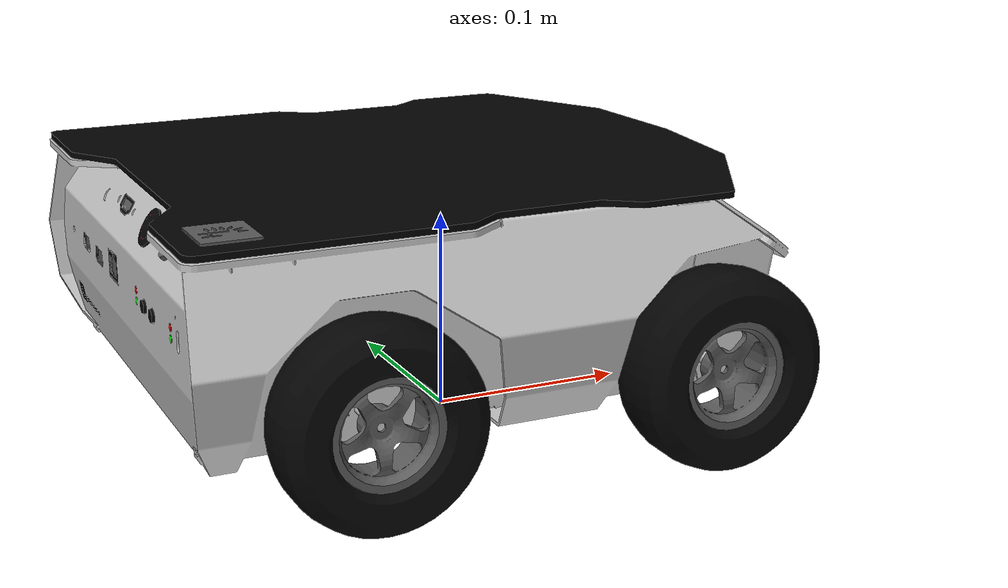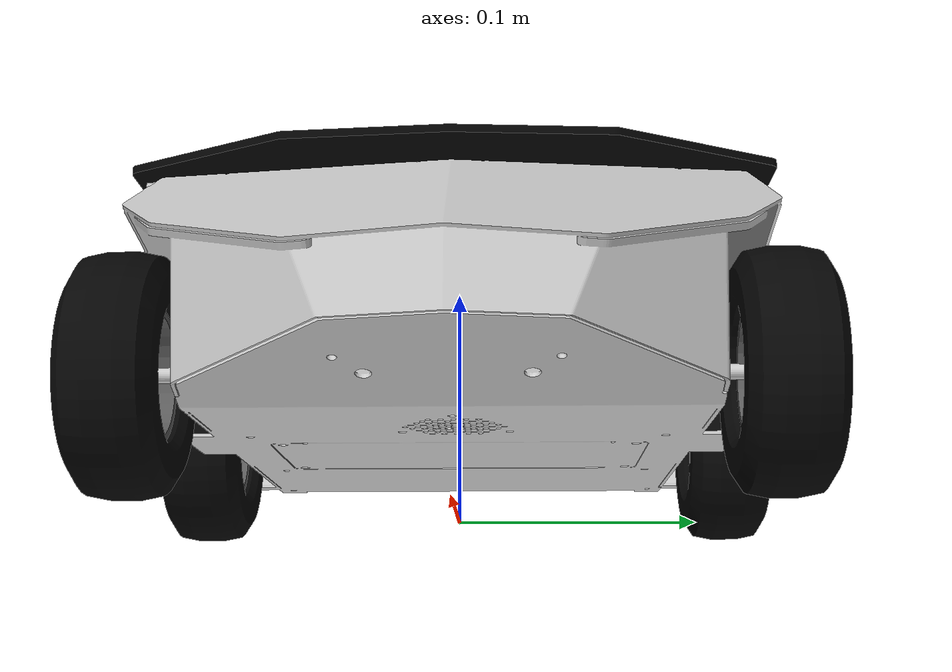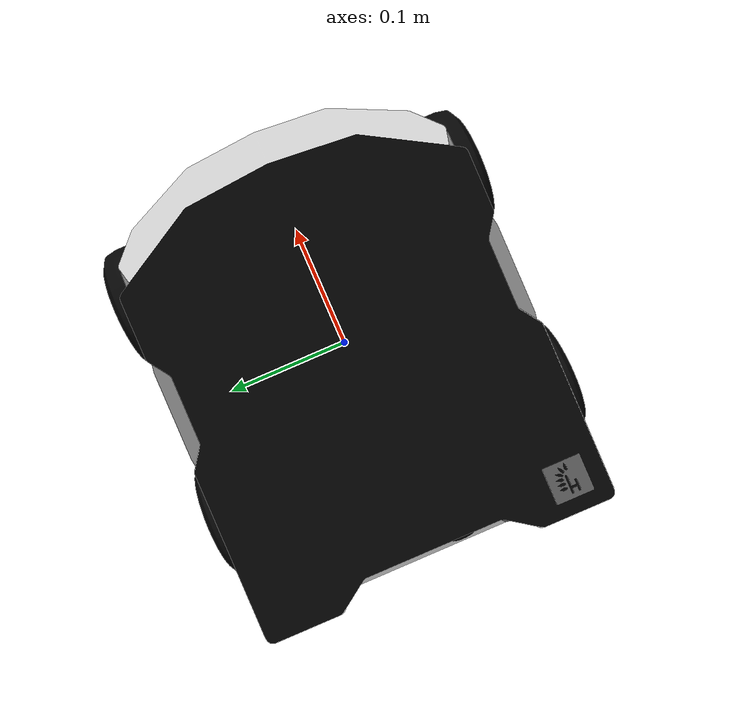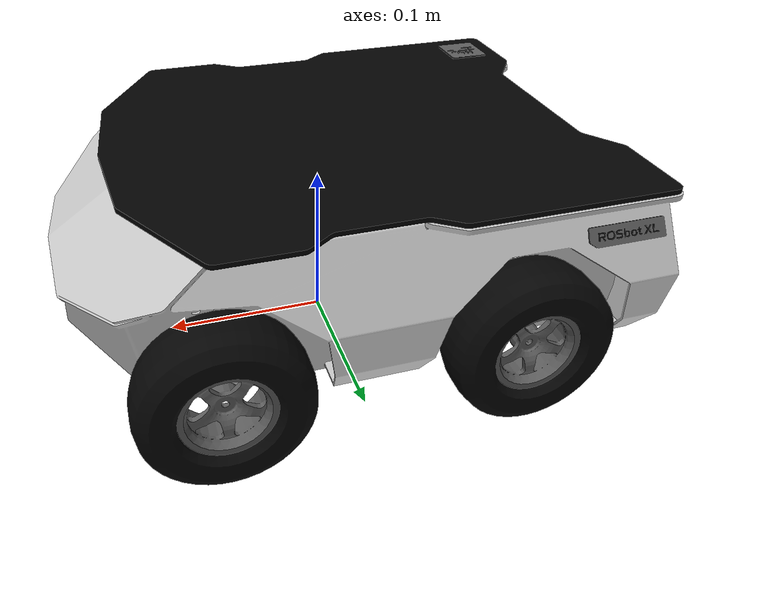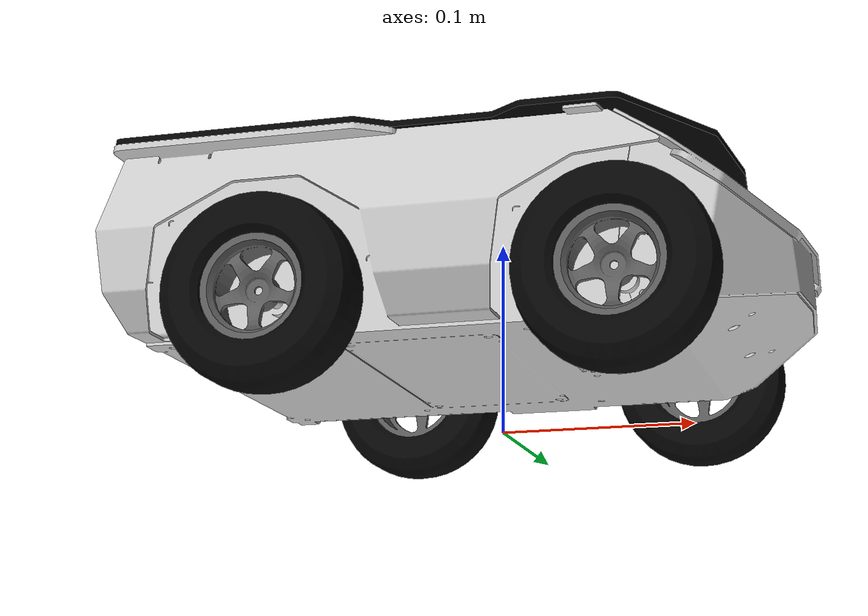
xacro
<?xml version="1.0"?>
<robot xmlns:xacro="http://www.ros.org/wiki/xacro">

  <!-- ============ parameters (real ROSbot XL non-mecanum values) ============ -->
  <xacro:property name="wheel_radius"    value="0.048"/>
  <xacro:property name="wheel_thickness" value="0.036"/>
  <xacro:property name="wheel_mass"      value="0.051"/>

  <xacro:property name="wheel_xoff" value="0.085"/>  <!-- half wheelbase (0.170 total) -->
  <xacro:property name="wheel_yoff" value="0.124"/>  <!-- half track  (0.248 total) -->

  <xacro:property name="mesh_pkg" value="package://rosbot_description/meshes/rosbot_xl"/>

  <!-- ============ base_footprint (nav frame at ground) ============ -->
  <link name="base_footprint"/>

  <joint name="base_joint" type="fixed">
    <parent link="base_footprint"/>
    <child  link="base_link"/>
    <origin xyz="0 0 ${wheel_radius}" rpy="0 0 0"/>
  </joint>

  <!-- ============ chassis (official body mesh) ============ -->
  <link name="base_link">
    <visual>
      <geometry><mesh filename="${mesh_pkg}/body.dae" scale="1 1 1"/></geometry>
    </visual>
    <collision>
      <geometry><mesh filename="${mesh_pkg}/body_colision.stl" scale="1 1 1"/></geometry>
    </collision>
    <inertial>
      <mass value="3.5"/>
      <origin xyz="0 0 0.0358" rpy="0 0 0"/>
      <inertia ixx="0.01393" ixy="-0.000020968097" ixz="0.000010399694"
               iyy="0.01081" iyz="0.000059372953" izz="0.02048"/>
    </inertial>
  </link>

  <!-- ============ wheel macro (official meshes, our joint naming) ============ -->
  <xacro:macro name="wheel" params="name x y mesh_letter rot">
    <link name="${name}_wheel">
      <visual>
        <origin xyz="0 0 0" rpy="0 0 ${rot}"/>
        <geometry><mesh filename="${mesh_pkg}/wheel_${mesh_letter}.dae" scale="1 1 1"/></geometry>
      </visual>
      <collision>
        <origin xyz="0 0 0" rpy="1.5708 0 0"/>
        <geometry><cylinder radius="${wheel_radius}" length="${wheel_thickness}"/></geometry>
      </collision>
      <inertial>
        <mass value="${wheel_mass}"/>
        <inertia ixx="0.000050587413" ixy="0.0" ixz="0.0"
                 iyy="0.000085933192" iyz="0.0" izz="0.000050587829"/>
      </inertial>
    </link>

    <joint name="${name}_wheel_joint" type="continuous">
      <parent link="base_link"/>
      <child  link="${name}_wheel"/>
      <origin xyz="${x} ${y} 0" rpy="0 0 0"/>
      <axis xyz="0 1 0"/>
    </joint>

    <gazebo reference="${name}_wheel">
      <collision>
        <surface>
          <friction>
            <ode><mu>1</mu><mu2>1</mu2><slip1>0.035</slip1><slip2>0</slip2></ode>
          </friction>
        </surface>
      </collision>
    </gazebo>
  </xacro:macro>

  <xacro:wheel name="front_left"  x="${wheel_xoff}"  y="${wheel_yoff}"  mesh_letter="b" rot="3.14159"/>
  <xacro:wheel name="front_right" x="${wheel_xoff}"  y="${-wheel_yoff}" mesh_letter="a" rot="3.14159"/>
  <xacro:wheel name="rear_left"   x="${-wheel_xoff}" y="${wheel_yoff}"  mesh_letter="a" rot="0"/>
  <xacro:wheel name="rear_right"  x="${-wheel_xoff}" y="${-wheel_yoff}" mesh_letter="b" rot="0"/>

</robot>
